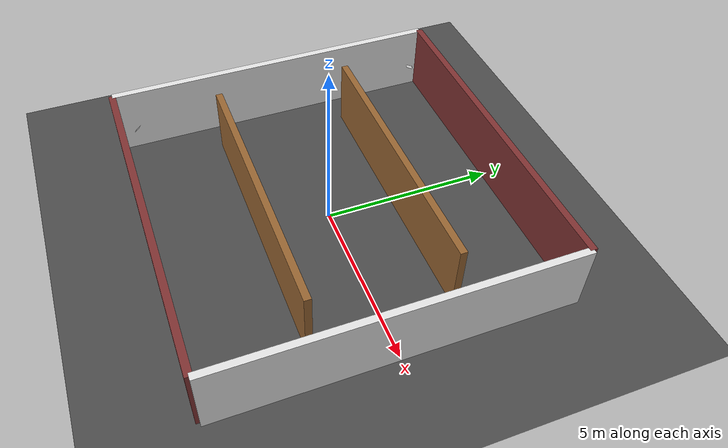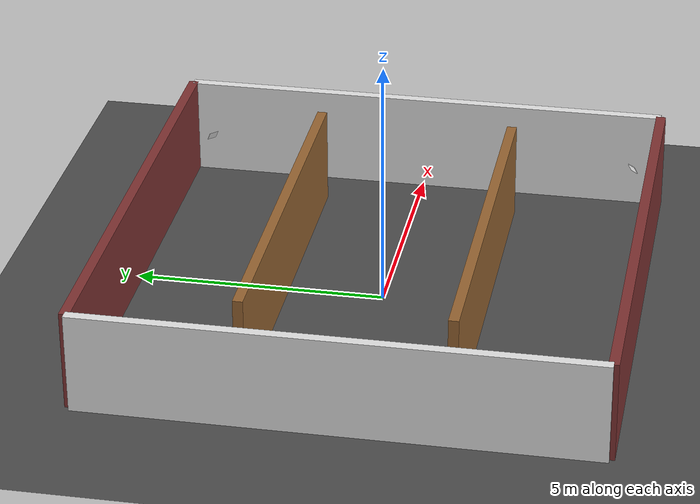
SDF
<?xml version="1.0"?>
<sdf version="1.7">
  <world name="fusion_test_world">

    <!-- Physics settings -->
    <physics name="default_physics" type="ode">
      <max_step_size>0.001</max_step_size>
      <real_time_factor>1.0</real_time_factor>
      <real_time_update_rate>1000</real_time_update_rate>
    </physics>

    <!-- Essential Gazebo Plugins -->
    <plugin
      filename="ignition-gazebo-physics-system"
      name="ignition::gazebo::systems::Physics">
    </plugin>
    <plugin
      filename="ignition-gazebo-sensors-system"
      name="ignition::gazebo::systems::Sensors">
      <render_engine>ogre2</render_engine>
    </plugin>
    <plugin
      filename="ignition-gazebo-scene-broadcaster-system"
      name="ignition::gazebo::systems::SceneBroadcaster">
    </plugin>
    <plugin
      filename="ignition-gazebo-user-commands-system"
      name="ignition::gazebo::systems::UserCommands">
    </plugin>

    <!-- Scene settings -->
    <scene>
      <ambient>0.5 0.5 0.5 1.0</ambient>
      <background>0.3 0.3 0.3 1.0</background>
      <shadows>true</shadows>
    </scene>

    <!-- Lighting -->
    <light type="directional" name="sun">
      <cast_shadows>true</cast_shadows>
      <pose>0 0 10 0 0 0</pose>
      <diffuse>0.8 0.8 0.8 1</diffuse>
      <specular>0.2 0.2 0.2 1</specular>
      <attenuation>
        <range>1000</range>
        <constant>0.9</constant>
        <linear>0.01</linear>
        <quadratic>0.001</quadratic>
      </attenuation>
      <direction>-0.5 0.1 -0.9</direction>
    </light>

    <!-- Ground Plane -->
    <model name="ground_plane">
      <static>true</static>
      <link name="link">
        <collision name="collision">
          <geometry>
            <plane>
              <normal>0 0 1</normal>
              <size>100 100</size>
            </plane>
          </geometry>
          <surface>
            <friction>
              <ode>
                <mu>100</mu>
                <mu2>50</mu2>
              </ode>
            </friction>
          </surface>
        </collision>
        <visual name="visual">
          <geometry>
            <plane>
              <normal>0 0 1</normal>
              <size>100 100</size>
            </plane>
          </geometry>
          <material>
            <ambient>0.3 0.3 0.3 1</ambient>
            <diffuse>0.3 0.3 0.3 1</diffuse>
            <specular>0.1 0.1 0.1 1</specular>
          </material>
        </visual>
      </link>
    </model>

    <!-- Loop Layout - Outer walls creating a rectangular loop -->
    <!-- Wall dimensions -->
    <!-- Loop: 10m x 8m rectangle with 0.2m thick walls -->

    <!-- North Wall (Top of loop) -->
    <model name="wall_north">
      <static>true</static>
      <pose>0 5 1 0 0 0</pose>
      <link name="link">
        <collision name="collision">
          <geometry>
            <box>
              <size>10 0.2 2</size>
            </box>
          </geometry>
        </collision>
        <visual name="visual">
          <geometry>
            <box>
              <size>10 0.2 2</size>
            </box>
          </geometry>
          <material>
            <ambient>0.5 0.2 0.2 1</ambient>
            <diffuse>0.5 0.2 0.2 1</diffuse>
            <specular>0.1 0.1 0.1 1</specular>
          </material>
        </visual>
      </link>
    </model>

    <!-- South Wall (Bottom of loop) -->
    <model name="wall_south">
      <static>true</static>
      <pose>0 -5 1 0 0 0</pose>
      <link name="link">
        <collision name="collision">
          <geometry>
            <box>
              <size>10 0.2 2</size>
            </box>
          </geometry>
        </collision>
        <visual name="visual">
          <geometry>
            <box>
              <size>10 0.2 2</size>
            </box>
          </geometry>
          <material>
            <ambient>0.5 0.2 0.2 1</ambient>
            <diffuse>0.5 0.2 0.2 1</diffuse>
            <specular>0.1 0.1 0.1 1</specular>
          </material>
        </visual>
      </link>
    </model>

    <!-- East Wall (Right side) -->
    <model name="wall_east">
      <static>true</static>
      <pose>5 0 1 0 0 0</pose>
      <link name="link">
        <collision name="collision">
          <geometry>
            <box>
              <size>0.2 10 2</size>
            </box>
          </geometry>
        </collision>
        <visual name="visual">
          <geometry>
            <box>
              <size>0.2 10 2</size>
            </box>
          </geometry>
          <material>
            <ambient>0.9 0.9 0.9 1</ambient>
            <diffuse>0.9 0.9 0.9 1</diffuse>
            <specular>0.1 0.1 0.1 1</specular>
          </material>
        </visual>
      </link>
    </model>

    <!-- West Wall (Left side) -->
    <model name="wall_west">
      <static>true</static>
      <pose>-5 0 1 0 0 0</pose>
      <link name="link">
        <collision name="collision">
          <geometry>
            <box>
              <size>0.2 10 2</size>
            </box>
          </geometry>
        </collision>
        <visual name="visual">
          <geometry>
            <box>
              <size>0.2 10 2</size>
            </box>
          </geometry>
          <material>
            <ambient>0.9 0.9 0.9 1</ambient>
            <diffuse>0.9 0.9 0.9 1</diffuse>
            <specular>0.1 0.1 0.1 1</specular>
          </material>
        </visual>
      </link>
    </model>

    <!-- Inner dividing walls to create hallway structure -->
    <!-- Vertical divider in the middle creating two hallways -->
    <model name="wall_divider_vertical_1">
      <static>true</static>
      <pose>0 2 1 0 0 0</pose>
      <link name="link">
        <collision name="collision">
          <geometry>
            <box>
              <size>8 0.2 2</size>
            </box>
          </geometry>
        </collision>
        <visual name="visual">
          <geometry>
            <box>
              <size>8 0.2 2</size>
            </box>
          </geometry>
          <material>
            <ambient>0.6 0.4 0.2 1</ambient>
            <diffuse>0.6 0.4 0.2 1</diffuse>
            <specular>0.1 0.1 0.1 1</specular>
          </material>
        </visual>
      </link>
    </model>

    <model name="wall_divider_vertical_2">
      <static>true</static>
      <pose>0 -2 1 0 0 0</pose>
      <link name="link">
        <collision name="collision">
          <geometry>
            <box>
              <size>8 0.2 2</size>
            </box>
          </geometry>
        </collision>
        <visual name="visual">
          <geometry>
            <box>
              <size>8 0.2 2</size>
            </box>
          </geometry>
          <material>
            <ambient>0.6 0.4 0.2 1</ambient>
            <diffuse>0.6 0.4 0.2 1</diffuse>
            <specular>0.1 0.1 0.1 1</specular>
          </material>
        </visual>
      </link>
    </model>

    <!-- WhyCode Marker 0 - North-East Corner -->
    <!-- Include model using URI (requires GAZEBO_MODEL_PATH to be set) -->
    <include>
      <uri>model://whycode_0</uri>
      <name>whycode_marker_0</name>
      <!-- Pose: x y z roll pitch yaw (yaw=-135deg=-3π/4 to face inward) -->
      <pose>4.5 4.5 1.0 0 0 -2.356</pose>
    </include>

    <!-- WhyCode Marker 1 - North-West Corner -->
    <include>
      <uri>model://whycode_1</uri>
      <name>whycode_marker_1</name>
      <!-- Pose: x y z roll pitch yaw (yaw=135deg=3π/4 to face inward) -->
      <pose>-4.5 4.5 1.0 0 0 2.356</pose>
    </include>

    <!-- WhyCode Marker 2 - South-West Corner -->
    <include>
      <uri>model://whycode_2</uri>
      <name>whycode_marker_2</name>
      <!-- Pose: x y z roll pitch yaw (yaw=45deg=π/4 to face inward) -->
      <pose>-4.5 -4.5 1.0 0 0 0.785</pose>
    </include>

    <!-- WhyCode Marker 3 - South-East Corner -->
    <include>
      <uri>model://whycode_3</uri>
      <name>whycode_marker_3</name>
      <!-- Pose: x y z roll pitch yaw (yaw=-45deg=-π/4 to face inward) -->
      <pose>4.5 -4.5 1.0 0 0 -0.785</pose>
    </include>

  </world>
</sdf>

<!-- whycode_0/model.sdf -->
<sdf version="1.7">
  <model name="WhyCode_0">
    <static>true</static>
    <link name="link">
      <pose>0 0 0 0 2.0944 0</pose>
      <collision name="collision">
        <geometry>
          <box>
            <size>0.2 0.2 0.01</size>
          </box>
        </geometry>
      </collision>
      <visual name="visual">
        <geometry>
          <box>
            <size>0.2 0.2 0.01</size>
          </box>
        </geometry>
        <material>
          <ambient>1 1 1 1</ambient>
          <diffuse>1 1 1 1</diffuse>
          <specular>0 0 0 1</specular>
          <pbr>
            <metal>
              <albedo_map>model://whycode_0/materials/textures/whycode_1.png</albedo_map>
              <roughness>0.5</roughness>
              <metalness>0.0</metalness>
            </metal>
          </pbr>
          <!-- Fallback for Ogre 1.x -->
          <script>
            <uri>model://whycode_0/materials/scripts</uri>
            <uri>model://whycode_0/materials/textures</uri>
            <name>WhyCode_0/Marker</name>
          </script>
        </material>
      </visual>
    </link>
  </model>
</sdf>

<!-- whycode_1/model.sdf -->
<sdf version="1.7">
  <model name="WhyCode_1">
    <static>true</static>
    <link name="link">
      <pose>0 0 0 0 -2.0944 0</pose>
      <collision name="collision">
        <geometry>
          <box>
            <size>0.2 0.2 0.01</size>
          </box>
        </geometry>
      </collision>
      <visual name="visual">
        <geometry>
          <box>
            <size>0.2 0.2 0.01</size>
          </box>
        </geometry>
        <material>
          <ambient>1 1 1 1</ambient>
          <diffuse>1 1 1 1</diffuse>
          <specular>0 0 0 1</specular>
          <pbr>
            <metal>
              <albedo_map>model://whycode_1/materials/textures/whycode_2.png</albedo_map>
              <roughness>0.5</roughness>
              <metalness>0.0</metalness>
            </metal>
          </pbr>
          <!-- Fallback for Ogre 1.x -->
          <script>
            <uri>model://whycode_1/materials/scripts</uri>
            <uri>model://whycode_1/materials/textures</uri>
            <name>WhyCode_1/Marker</name>
          </script>
        </material>
      </visual>
    </link>
  </model>
</sdf>

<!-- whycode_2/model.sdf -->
<sdf version="1.7">
  <model name="WhyCode_2">
    <static>true</static>
    <link name="link">
      <pose>0 0 0 0 2.0944 0</pose>
      <collision name="collision">
        <geometry>
          <box>
            <size>0.2 0.2 0.01</size>
          </box>
        </geometry>
      </collision>
      <visual name="visual">
        <geometry>
          <box>
            <size>0.2 0.2 0.01</size>
          </box>
        </geometry>
        <material>
          <ambient>1 1 1 1</ambient>
          <diffuse>1 1 1 1</diffuse>
          <specular>0 0 0 1</specular>
          <pbr>
            <metal>
              <albedo_map>model://whycode_2/materials/textures/whycode_3.png</albedo_map>
              <roughness>0.5</roughness>
              <metalness>0.0</metalness>
            </metal>
          </pbr>
          <!-- Fallback for Ogre 1.x -->
          <script>
            <uri>model://whycode_2/materials/scripts</uri>
            <uri>model://whycode_2/materials/textures</uri>
            <name>WhyCode_2/Marker</name>
          </script>
        </material>
      </visual>
    </link>
  </model>
</sdf>

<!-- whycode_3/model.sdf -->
<sdf version="1.7">
  <model name="WhyCode_3">
    <static>true</static>
    <link name="link">
      <pose>0 0 0 0 -2.0944 0</pose>
      <collision name="collision">
        <geometry>
          <box>
            <size>0.2 0.2 0.01</size>
          </box>
        </geometry>
      </collision>
      <visual name="visual">
        <geometry>
          <box>
            <size>0.2 0.2 0.01</size>
          </box>
        </geometry>
        <material>
          <ambient>1 1 1 1</ambient>
          <diffuse>1 1 1 1</diffuse>
          <specular>0 0 0 1</specular>
          <pbr>
            <metal>
              <albedo_map>model://whycode_3/materials/textures/whycode_4.png</albedo_map>
              <roughness>0.5</roughness>
              <metalness>0.0</metalness>
            </metal>
          </pbr>
          <!-- Fallback for Ogre 1.x -->
          <script>
            <uri>model://whycode_3/materials/scripts</uri>
            <uri>model://whycode_3/materials/textures</uri>
            <name>WhyCode_3/Marker</name>
          </script>
        </material>
      </visual>
    </link>
  </model>
</sdf>
